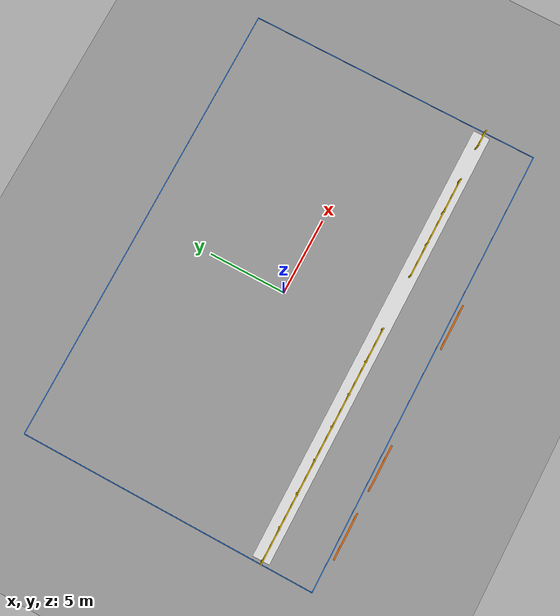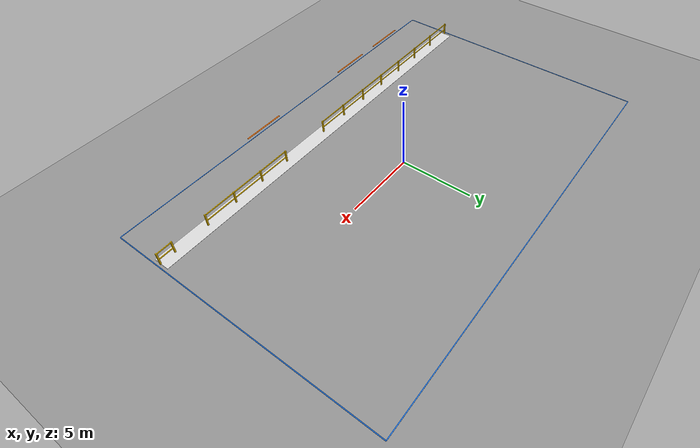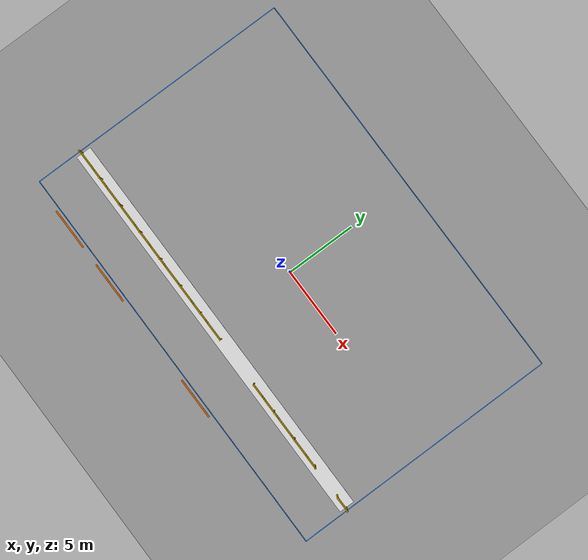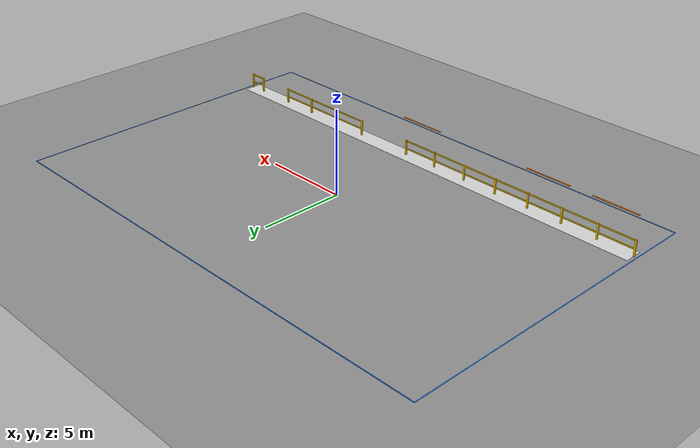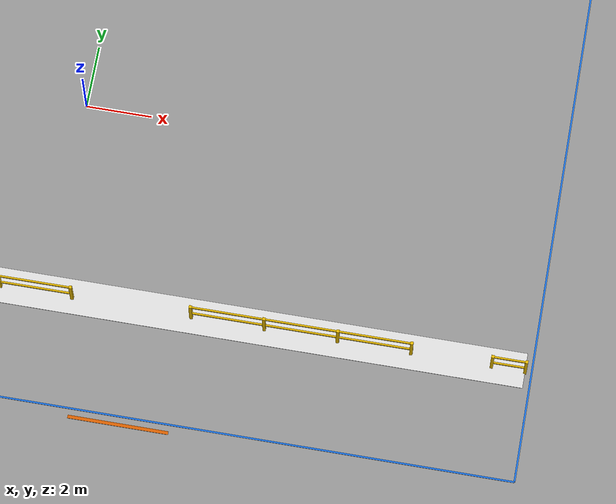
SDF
<sdf version="1.8">
 <world name="warehouse_meerhoven">
  <physics name="default_physics" type="ode">
   <max_step_size>0.001</max_step_size>
   <real_time_factor>1.0</real_time_factor>
   <real_time_update_rate>1000</real_time_update_rate>
  </physics>
  <plugin filename="gz-sim-physics-system" name="gz::sim::systems::Physics"/>
  <plugin filename="gz-sim-user-commands-system" name="gz::sim::systems::UserCommands"/>
  <plugin filename="gz-sim-scene-broadcaster-system" name="gz::sim::systems::SceneBroadcaster"/>
  <plugin filename="gz-sim-sensors-system" name="gz::sim::systems::Sensors">
   <render_engine>ogre2</render_engine>
  </plugin>
  <plugin filename="gz-sim-contact-system" name="gz::sim::systems::Contact"/>
  <scene><ambient>0.72 0.72 0.72 1</ambient><background>0.82 0.86 0.90 1</background><grid>false</grid></scene>
  <light type="directional" name="sun">
   <pose>0 0 12 0 0 0</pose>
   <diffuse>0.9 0.9 0.9 1</diffuse>
   <specular>0.25 0.25 0.25 1</specular>
   <direction>-0.4 0.3 -0.9</direction>
  </light>
  <model name="ground_plane">
   <static>true</static>
   <link name="link">
    <collision name="collision">
     <geometry><plane><normal>0 0 1</normal><size>200 200</size></plane></geometry>
    </collision>
    <visual name="visual">
     <geometry><plane><normal>0 0 1</normal><size>200 200</size></plane></geometry>
     <material><ambient>0.55 0.55 0.55 1</ambient><diffuse>0.58 0.58 0.58 1</diffuse></material>
    </visual>
   </link>
  </model>
  <model name="floor_markings">
   <static>true</static>
   <link name="bnd_s">
    <pose>0.000 -9.600 0.035 0 0 0</pose>
    <visual name="visual">
     <geometry><box><size>29.200 0.050 0.014</size></box></geometry>
     <material><ambient>0.10 0.45 0.90 1</ambient><diffuse>0.10 0.45 0.90 1</diffuse></material>
    </visual>
   </link>
   <link name="bnd_n">
    <pose>0.000 9.600 0.035 0 0 0</pose>
    <visual name="visual">
     <geometry><box><size>29.200 0.050 0.014</size></box></geometry>
     <material><ambient>0.10 0.45 0.90 1</ambient><diffuse>0.10 0.45 0.90 1</diffuse></material>
    </visual>
   </link>
   <link name="bnd_w">
    <pose>-14.600 0.000 0.035 0 0 0</pose>
    <visual name="visual">
     <geometry><box><size>0.050 19.200 0.014</size></box></geometry>
     <material><ambient>0.10 0.45 0.90 1</ambient><diffuse>0.10 0.45 0.90 1</diffuse></material>
    </visual>
   </link>
   <link name="bnd_e">
    <pose>14.600 0.000 0.035 0 0 0</pose>
    <visual name="visual">
     <geometry><box><size>0.050 19.200 0.014</size></box></geometry>
     <material><ambient>0.10 0.45 0.90 1</ambient><diffuse>0.10 0.45 0.90 1</diffuse></material>
    </visual>
   </link>
   <link name="dock_0">
    <pose>-10.900 -9.860 0.035 0 0 0</pose>
    <visual name="visual">
     <geometry><box><size>3.000 0.100 0.014</size></box></geometry>
     <material><ambient>0.84 0.37 0.00 1</ambient><diffuse>0.84 0.37 0.00 1</diffuse></material>
    </visual>
   </link>
   <link name="dock_1">
    <pose>-6.500 -9.860 0.035 0 0 0</pose>
    <visual name="visual">
     <geometry><box><size>3.000 0.100 0.014</size></box></geometry>
     <material><ambient>0.84 0.37 0.00 1</ambient><diffuse>0.84 0.37 0.00 1</diffuse></material>
    </visual>
   </link>
   <link name="dock_2">
    <pose>2.900 -9.860 0.035 0 0 0</pose>
    <visual name="visual">
     <geometry><box><size>3.000 0.100 0.014</size></box></geometry>
     <material><ambient>0.84 0.37 0.00 1</ambient><diffuse>0.84 0.37 0.00 1</diffuse></material>
    </visual>
   </link>
   <link name="grail_0_post0">
    <pose>-14.400 -6.200 0.475 0 0 0</pose>
    <collision name="collision"><geometry><box><size>0.090 0.090 0.950</size></box></geometry></collision>
    <visual name="visual">
     <geometry><box><size>0.090 0.090 0.950</size></box></geometry>
     <material><ambient>0.90 0.72 0.00 1</ambient><diffuse>0.90 0.72 0.00 1</diffuse></material>
    </visual>
   </link>
   <link name="grail_0_post1">
    <pose>-12.229 -6.200 0.475 0 0 0</pose>
    <collision name="collision"><geometry><box><size>0.090 0.090 0.950</size></box></geometry></collision>
    <visual name="visual">
     <geometry><box><size>0.090 0.090 0.950</size></box></geometry>
     <material><ambient>0.90 0.72 0.00 1</ambient><diffuse>0.90 0.72 0.00 1</diffuse></material>
    </visual>
   </link>
   <link name="grail_0_post2">
    <pose>-10.057 -6.200 0.475 0 0 0</pose>
    <collision name="collision"><geometry><box><size>0.090 0.090 0.950</size></box></geometry></collision>
    <visual name="visual">
     <geometry><box><size>0.090 0.090 0.950</size></box></geometry>
     <material><ambient>0.90 0.72 0.00 1</ambient><diffuse>0.90 0.72 0.00 1</diffuse></material>
    </visual>
   </link>
   <link name="grail_0_post3">
    <pose>-7.886 -6.200 0.475 0 0 0</pose>
    <collision name="collision"><geometry><box><size>0.090 0.090 0.950</size></box></geometry></collision>
    <visual name="visual">
     <geometry><box><size>0.090 0.090 0.950</size></box></geometry>
     <material><ambient>0.90 0.72 0.00 1</ambient><diffuse>0.90 0.72 0.00 1</diffuse></material>
    </visual>
   </link>
   <link name="grail_0_post4">
    <pose>-5.714 -6.200 0.475 0 0 0</pose>
    <collision name="collision"><geometry><box><size>0.090 0.090 0.950</size></box></geometry></collision>
    <visual name="visual">
     <geometry><box><size>0.090 0.090 0.950</size></box></geometry>
     <material><ambient>0.90 0.72 0.00 1</ambient><diffuse>0.90 0.72 0.00 1</diffuse></material>
    </visual>
   </link>
   <link name="grail_0_post5">
    <pose>-3.543 -6.200 0.475 0 0 0</pose>
    <collision name="collision"><geometry><box><size>0.090 0.090 0.950</size></box></geometry></collision>
    <visual name="visual">
     <geometry><box><size>0.090 0.090 0.950</size></box></geometry>
     <material><ambient>0.90 0.72 0.00 1</ambient><diffuse>0.90 0.72 0.00 1</diffuse></material>
    </visual>
   </link>
   <link name="grail_0_post6">
    <pose>-1.371 -6.200 0.475 0 0 0</pose>
    <collision name="collision"><geometry><box><size>0.090 0.090 0.950</size></box></geometry></collision>
    <visual name="visual">
     <geometry><box><size>0.090 0.090 0.950</size></box></geometry>
     <material><ambient>0.90 0.72 0.00 1</ambient><diffuse>0.90 0.72 0.00 1</diffuse></material>
    </visual>
   </link>
   <link name="grail_0_post7">
    <pose>0.800 -6.200 0.475 0 0 0</pose>
    <collision name="collision"><geometry><box><size>0.090 0.090 0.950</size></box></geometry></collision>
    <visual name="visual">
     <geometry><box><size>0.090 0.090 0.950</size></box></geometry>
     <material><ambient>0.90 0.72 0.00 1</ambient><diffuse>0.90 0.72 0.00 1</diffuse></material>
    </visual>
   </link>
   <link name="grail_0_rail0.42">
    <pose>-6.800 -6.200 0.420 0 0 0</pose>
    <visual name="visual">
     <geometry><box><size>15.200 0.050 0.060</size></box></geometry>
     <material><ambient>0.90 0.72 0.00 1</ambient><diffuse>0.90 0.72 0.00 1</diffuse></material>
    </visual>
   </link>
   <link name="grail_0_rail0.90">
    <pose>-6.800 -6.200 0.900 0 0 0</pose>
    <visual name="visual">
     <geometry><box><size>15.200 0.050 0.060</size></box></geometry>
     <material><ambient>0.90 0.72 0.00 1</ambient><diffuse>0.90 0.72 0.00 1</diffuse></material>
    </visual>
   </link>
   <link name="grail_1_post0">
    <pose>4.400 -6.200 0.475 0 0 0</pose>
    <collision name="collision"><geometry><box><size>0.090 0.090 0.950</size></box></geometry></collision>
    <visual name="visual">
     <geometry><box><size>0.090 0.090 0.950</size></box></geometry>
     <material><ambient>0.90 0.72 0.00 1</ambient><diffuse>0.90 0.72 0.00 1</diffuse></material>
    </visual>
   </link>
   <link name="grail_1_post1">
    <pose>6.600 -6.200 0.475 0 0 0</pose>
    <collision name="collision"><geometry><box><size>0.090 0.090 0.950</size></box></geometry></collision>
    <visual name="visual">
     <geometry><box><size>0.090 0.090 0.950</size></box></geometry>
     <material><ambient>0.90 0.72 0.00 1</ambient><diffuse>0.90 0.72 0.00 1</diffuse></material>
    </visual>
   </link>
   <link name="grail_1_post2">
    <pose>8.800 -6.200 0.475 0 0 0</pose>
    <collision name="collision"><geometry><box><size>0.090 0.090 0.950</size></box></geometry></collision>
    <visual name="visual">
     <geometry><box><size>0.090 0.090 0.950</size></box></geometry>
     <material><ambient>0.90 0.72 0.00 1</ambient><diffuse>0.90 0.72 0.00 1</diffuse></material>
    </visual>
   </link>
   <link name="grail_1_post3">
    <pose>11.000 -6.200 0.475 0 0 0</pose>
    <collision name="collision"><geometry><box><size>0.090 0.090 0.950</size></box></geometry></collision>
    <visual name="visual">
     <geometry><box><size>0.090 0.090 0.950</size></box></geometry>
     <material><ambient>0.90 0.72 0.00 1</ambient><diffuse>0.90 0.72 0.00 1</diffuse></material>
    </visual>
   </link>
   <link name="grail_1_rail0.42">
    <pose>7.700 -6.200 0.420 0 0 0</pose>
    <visual name="visual">
     <geometry><box><size>6.600 0.050 0.060</size></box></geometry>
     <material><ambient>0.90 0.72 0.00 1</ambient><diffuse>0.90 0.72 0.00 1</diffuse></material>
    </visual>
   </link>
   <link name="grail_1_rail0.90">
    <pose>7.700 -6.200 0.900 0 0 0</pose>
    <visual name="visual">
     <geometry><box><size>6.600 0.050 0.060</size></box></geometry>
     <material><ambient>0.90 0.72 0.00 1</ambient><diffuse>0.90 0.72 0.00 1</diffuse></material>
    </visual>
   </link>
   <link name="grail_2_post0">
    <pose>13.400 -6.200 0.475 0 0 0</pose>
    <collision name="collision"><geometry><box><size>0.090 0.090 0.950</size></box></geometry></collision>
    <visual name="visual">
     <geometry><box><size>0.090 0.090 0.950</size></box></geometry>
     <material><ambient>0.90 0.72 0.00 1</ambient><diffuse>0.90 0.72 0.00 1</diffuse></material>
    </visual>
   </link>
   <link name="grail_2_post1">
    <pose>14.400 -6.200 0.475 0 0 0</pose>
    <collision name="collision"><geometry><box><size>0.090 0.090 0.950</size></box></geometry></collision>
    <visual name="visual">
     <geometry><box><size>0.090 0.090 0.950</size></box></geometry>
     <material><ambient>0.90 0.72 0.00 1</ambient><diffuse>0.90 0.72 0.00 1</diffuse></material>
    </visual>
   </link>
   <link name="grail_2_rail0.42">
    <pose>13.900 -6.200 0.420 0 0 0</pose>
    <visual name="visual">
     <geometry><box><size>1.000 0.050 0.060</size></box></geometry>
     <material><ambient>0.90 0.72 0.00 1</ambient><diffuse>0.90 0.72 0.00 1</diffuse></material>
    </visual>
   </link>
   <link name="grail_2_rail0.90">
    <pose>13.900 -6.200 0.900 0 0 0</pose>
    <visual name="visual">
     <geometry><box><size>1.000 0.050 0.060</size></box></geometry>
     <material><ambient>0.90 0.72 0.00 1</ambient><diffuse>0.90 0.72 0.00 1</diffuse></material>
    </visual>
   </link>
   <link name="walkway_0">
    <pose>0.000 -6.150 0.030 0 0 0</pose>
    <visual name="visual">
     <geometry><box><size>28.800 1.100 0.012</size></box></geometry>
     <material><ambient>0.86 0.86 0.86 1</ambient><diffuse>0.86 0.86 0.86 1</diffuse></material>
    </visual>
   </link>
  </model>
  <include>
   <name>external_camera</name>
   <uri>model://external_camera</uri>
   <pose>-8.600 -9.600 6.100 0 0.91979 1.53589</pose>
  </include>
  <include>
   <name>external_camera_b</name>
   <uri>model://external_camera_b</uri>
   <pose>2.700 -9.600 6.100 0 0.91979 1.60570</pose>
  </include>
  <include>
   <name>external_camera_c</name>
   <uri>model://external_camera_c</uri>
   <pose>5.000 -5.600 6.100 0 1.08210 1.08210</pose>
  </include>
  <include>
   <name>external_camera_d</name>
   <uri>model://external_camera_d</uri>
   <pose>14.700 5.400 5.600 0 0.91979 -2.18166</pose>
  </include>
  <include>
   <name>external_camera_e</name>
   <uri>model://external_camera_e</uri>
   <pose>10.950 -6.500 2.900 0 1.08210 -1.74533</pose>
  </include>
  <include>
   <name>external_camera_f</name>
   <uri>model://external_camera_f</uri>
   <pose>14.200 9.400 3.300 0 1.22173 -2.23402</pose>
  </include>
  <include>
   <name>external_camera_g</name>
   <uri>model://external_camera_g</uri>
   <pose>-12.000 9.700 6.100 0 0.91979 -1.57080</pose>
  </include>
  <include>
   <name>external_camera_h</name>
   <uri>model://external_camera_h</uri>
   <pose>5.000 2.200 6.100 0 0.91979 -1.57080</pose>
  </include>
  <include>
   <name>external_camera_i</name>
   <uri>model://external_camera_i</uri>
   <pose>-7.400 9.700 6.100 0 0.91979 -1.57080</pose>
  </include>
  <include>
   <name>external_camera_j</name>
   <uri>model://external_camera_j</uri>
   <pose>-12.000 -9.700 6.100 0 0.91979 1.57080</pose>
  </include>
  <include>
   <name>external_camera_k</name>
   <uri>model://external_camera_k</uri>
   <pose>-3.000 -5.600 6.100 0 0.91979 0.00000</pose>
  </include>
  <include>
   <name>external_camera_l</name>
   <uri>model://external_camera_l</uri>
   <pose>-14.700 2.000 6.100 0 0.91979 0.00000</pose>
  </include>
 </world>
</sdf>

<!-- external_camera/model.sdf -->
<sdf version="1.6">
  <model name="external_camera">
    <static>true</static>
    <pose>0 0 0 0 0 0</pose>
    <link name="link">
      <sensor name="camera" type="camera">
        <camera>
          <horizontal_fov>1.5708</horizontal_fov> <!-- 90 degrees -->
          <image>
            <width>1280</width>
            <height>720</height>
          </image>
          <clip>
            <near>0.1</near>
            <far>100</far>
          </clip>
        </camera>
        <always_on>1</always_on>
        <update_rate>5</update_rate>
        <visualize>false</visualize>
        <topic>external_camera/image_raw</topic>
      </sensor>
      <sensor name="depth_camera" type="depth_camera">
        <camera>
          <horizontal_fov>1.5708</horizontal_fov>
          <image><width>1280</width><height>720</height><format>R_FLOAT32</format></image>
          <clip><near>0.1</near><far>100</far></clip>
        </camera>
        <always_on>0</always_on>
        <update_rate>5</update_rate>
        <visualize>false</visualize>
        <topic>external_camera/depth</topic>
      </sensor>
      <sensor name="segmentation_camera" type="segmentation">
        <camera>
          <segmentation_type>semantic</segmentation_type>
          <horizontal_fov>1.5708</horizontal_fov>
          <image>
            <width>1280</width>
            <height>720</height>
          </image>
          <clip>
            <near>0.1</near>
            <far>100</far>
          </clip>
        </camera>
        <always_on>0</always_on>
        <update_rate>1</update_rate>
        <visualize>false</visualize>
        <topic>external_camera/segmentation</topic>
      </sensor>
    </link>
  </model>
</sdf>

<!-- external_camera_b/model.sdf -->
<sdf version="1.6">
  <model name="external_camera_b">
    <static>true</static>
    <pose>0 0 0 0 0 0</pose>
    <link name="link">
      <sensor name="camera" type="camera">
        <camera>
          <horizontal_fov>1.5708</horizontal_fov>
          <image>
            <width>1280</width>
            <height>720</height>
          </image>
          <clip>
            <near>0.1</near>
            <far>100</far>
          </clip>
        </camera>
        <always_on>1</always_on>
        <update_rate>5</update_rate>
        <visualize>false</visualize>
        <topic>external_camera_b/image_raw</topic>
      </sensor>
      <sensor name="depth_camera" type="depth_camera">
        <camera>
          <horizontal_fov>1.5708</horizontal_fov>
          <image><width>1280</width><height>720</height><format>R_FLOAT32</format></image>
          <clip><near>0.1</near><far>100</far></clip>
        </camera>
        <always_on>0</always_on>
        <update_rate>5</update_rate>
        <visualize>false</visualize>
        <topic>external_camera_b/depth</topic>
      </sensor>
      <sensor name="segmentation_camera" type="segmentation">
        <camera>
          <segmentation_type>semantic</segmentation_type>
          <horizontal_fov>1.5708</horizontal_fov>
          <image>
            <width>1280</width>
            <height>720</height>
          </image>
          <clip>
            <near>0.1</near>
            <far>100</far>
          </clip>
        </camera>
        <always_on>0</always_on>
        <update_rate>1</update_rate>
        <visualize>false</visualize>
        <topic>external_camera_b/segmentation</topic>
      </sensor>
    </link>
  </model>
</sdf>

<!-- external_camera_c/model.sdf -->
<sdf version="1.6">
  <model name="external_camera_c">
    <static>true</static>
    <pose>0 0 0 0 0 0</pose>
    <link name="link">
      <sensor name="camera" type="camera">
        <camera>
          <horizontal_fov>1.5708</horizontal_fov>
          <image>
            <width>1280</width>
            <height>720</height>
          </image>
          <clip>
            <near>0.1</near>
            <far>100</far>
          </clip>
        </camera>
        <always_on>1</always_on>
        <update_rate>5</update_rate>
        <visualize>false</visualize>
        <topic>external_camera_c/image_raw</topic>
      </sensor>
      <sensor name="depth_camera" type="depth_camera">
        <camera>
          <horizontal_fov>1.5708</horizontal_fov>
          <image><width>1280</width><height>720</height><format>R_FLOAT32</format></image>
          <clip><near>0.1</near><far>100</far></clip>
        </camera>
        <always_on>0</always_on>
        <update_rate>5</update_rate>
        <visualize>false</visualize>
        <topic>external_camera_c/depth</topic>
      </sensor>
      <sensor name="segmentation_camera" type="segmentation">
        <camera>
          <segmentation_type>semantic</segmentation_type>
          <horizontal_fov>1.5708</horizontal_fov>
          <image>
            <width>1280</width>
            <height>720</height>
          </image>
          <clip>
            <near>0.1</near>
            <far>100</far>
          </clip>
        </camera>
        <always_on>0</always_on>
        <update_rate>1</update_rate>
        <visualize>false</visualize>
        <topic>external_camera_c/segmentation</topic>
      </sensor>
    </link>
  </model>
</sdf>

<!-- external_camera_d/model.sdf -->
<sdf version="1.6">
  <model name="external_camera_d">
    <static>true</static>
    <pose>0 0 0 0 0 0</pose>
    <link name="link">
      <sensor name="camera" type="camera">
        <camera>
          <horizontal_fov>1.5708</horizontal_fov>
          <image>
            <width>1280</width>
            <height>720</height>
          </image>
          <clip>
            <near>0.1</near>
            <far>100</far>
          </clip>
        </camera>
        <always_on>1</always_on>
        <update_rate>5</update_rate>
        <visualize>false</visualize>
        <topic>external_camera_d/image_raw</topic>
      </sensor>
      <sensor name="depth_camera" type="depth_camera">
        <camera>
          <horizontal_fov>1.5708</horizontal_fov>
          <image><width>1280</width><height>720</height><format>R_FLOAT32</format></image>
          <clip><near>0.1</near><far>100</far></clip>
        </camera>
        <always_on>0</always_on>
        <update_rate>5</update_rate>
        <visualize>false</visualize>
        <topic>external_camera_d/depth</topic>
      </sensor>
      <sensor name="segmentation_camera" type="segmentation">
        <camera>
          <segmentation_type>semantic</segmentation_type>
          <horizontal_fov>1.5708</horizontal_fov>
          <image>
            <width>1280</width>
            <height>720</height>
          </image>
          <clip>
            <near>0.1</near>
            <far>100</far>
          </clip>
        </camera>
        <always_on>0</always_on>
        <update_rate>1</update_rate>
        <visualize>false</visualize>
        <topic>external_camera_d/segmentation</topic>
      </sensor>
    </link>
  </model>
</sdf>

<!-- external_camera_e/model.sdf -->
<sdf version="1.6">
  <model name="external_camera_e">
    <static>true</static>
    <pose>0 0 0 0 0 0</pose>
    <link name="link">
      <sensor name="camera" type="camera">
        <camera>
          <horizontal_fov>1.5708</horizontal_fov>
          <image><width>1280</width><height>720</height></image>
          <clip><near>0.1</near><far>100</far></clip>
        </camera>
        <always_on>1</always_on>
        <update_rate>5</update_rate>
        <visualize>false</visualize>
        <topic>external_camera_e/image_raw</topic>
      </sensor>
      <sensor name="depth_camera" type="depth_camera">
        <camera>
          <horizontal_fov>1.5708</horizontal_fov>
          <image><width>1280</width><height>720</height><format>R_FLOAT32</format></image>
          <clip><near>0.1</near><far>100</far></clip>
        </camera>
        <always_on>0</always_on>
        <update_rate>5</update_rate>
        <visualize>false</visualize>
        <topic>external_camera_e/depth</topic>
      </sensor>
      <sensor name="segmentation_camera" type="segmentation">
        <camera>
          <segmentation_type>semantic</segmentation_type>
          <horizontal_fov>1.5708</horizontal_fov>
          <image><width>1280</width><height>720</height></image>
          <clip><near>0.1</near><far>100</far></clip>
        </camera>
        <always_on>0</always_on>
        <update_rate>1</update_rate>
        <visualize>false</visualize>
        <topic>external_camera_e/segmentation</topic>
      </sensor>
    </link>
  </model>
</sdf>

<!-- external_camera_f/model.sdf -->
<sdf version="1.6">
  <model name="external_camera_f">
    <static>true</static>
    <pose>0 0 0 0 0 0</pose>
    <link name="link">
      <sensor name="camera" type="camera">
        <camera>
          <horizontal_fov>1.5708</horizontal_fov>
          <image><width>1280</width><height>720</height></image>
          <clip><near>0.1</near><far>100</far></clip>
        </camera>
        <always_on>1</always_on>
        <update_rate>5</update_rate>
        <visualize>false</visualize>
        <topic>external_camera_f/image_raw</topic>
      </sensor>
      <sensor name="depth_camera" type="depth_camera">
        <camera>
          <horizontal_fov>1.5708</horizontal_fov>
          <image><width>1280</width><height>720</height><format>R_FLOAT32</format></image>
          <clip><near>0.1</near><far>100</far></clip>
        </camera>
        <always_on>0</always_on>
        <update_rate>5</update_rate>
        <visualize>false</visualize>
        <topic>external_camera_f/depth</topic>
      </sensor>
      <sensor name="segmentation_camera" type="segmentation">
        <camera>
          <segmentation_type>semantic</segmentation_type>
          <horizontal_fov>1.5708</horizontal_fov>
          <image><width>1280</width><height>720</height></image>
          <clip><near>0.1</near><far>100</far></clip>
        </camera>
        <always_on>0</always_on>
        <update_rate>1</update_rate>
        <visualize>false</visualize>
        <topic>external_camera_f/segmentation</topic>
      </sensor>
    </link>
  </model>
</sdf>

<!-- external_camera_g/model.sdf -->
<sdf version="1.6">
  <model name="external_camera_g">
    <static>true</static>
    <pose>0 0 0 0 0 0</pose>
    <link name="link">
      <sensor name="camera" type="camera">
        <camera>
          <horizontal_fov>1.5708</horizontal_fov>
          <image><width>1280</width><height>720</height></image>
          <clip><near>0.1</near><far>100</far></clip>
        </camera>
        <always_on>1</always_on>
        <update_rate>5</update_rate>
        <visualize>false</visualize>
        <topic>external_camera_g/image_raw</topic>
      </sensor>
      <sensor name="depth_camera" type="depth_camera">
        <camera>
          <horizontal_fov>1.5708</horizontal_fov>
          <image><width>1280</width><height>720</height><format>R_FLOAT32</format></image>
          <clip><near>0.1</near><far>100</far></clip>
        </camera>
        <always_on>0</always_on>
        <update_rate>5</update_rate>
        <visualize>false</visualize>
        <topic>external_camera_g/depth</topic>
      </sensor>
      <sensor name="segmentation_camera" type="segmentation">
        <camera>
          <segmentation_type>semantic</segmentation_type>
          <horizontal_fov>1.5708</horizontal_fov>
          <image><width>1280</width><height>720</height></image>
          <clip><near>0.1</near><far>100</far></clip>
        </camera>
        <always_on>0</always_on>
        <update_rate>1</update_rate>
        <visualize>false</visualize>
        <topic>external_camera_g/segmentation</topic>
      </sensor>
    </link>
  </model>
</sdf>

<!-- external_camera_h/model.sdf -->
<sdf version="1.6">
  <model name="external_camera_h">
    <static>true</static>
    <pose>0 0 0 0 0 0</pose>
    <link name="link">
      <sensor name="camera" type="camera">
        <camera>
          <horizontal_fov>1.5708</horizontal_fov>
          <image><width>1280</width><height>720</height></image>
          <clip><near>0.1</near><far>100</far></clip>
        </camera>
        <always_on>1</always_on>
        <update_rate>5</update_rate>
        <visualize>false</visualize>
        <topic>external_camera_h/image_raw</topic>
      </sensor>
      <sensor name="depth_camera" type="depth_camera">
        <camera>
          <horizontal_fov>1.5708</horizontal_fov>
          <image><width>1280</width><height>720</height><format>R_FLOAT32</format></image>
          <clip><near>0.1</near><far>100</far></clip>
        </camera>
        <always_on>0</always_on>
        <update_rate>5</update_rate>
        <visualize>false</visualize>
        <topic>external_camera_h/depth</topic>
      </sensor>
      <sensor name="segmentation_camera" type="segmentation">
        <camera>
          <segmentation_type>semantic</segmentation_type>
          <horizontal_fov>1.5708</horizontal_fov>
          <image><width>1280</width><height>720</height></image>
          <clip><near>0.1</near><far>100</far></clip>
        </camera>
        <always_on>0</always_on>
        <update_rate>1</update_rate>
        <visualize>false</visualize>
        <topic>external_camera_h/segmentation</topic>
      </sensor>
    </link>
  </model>
</sdf>

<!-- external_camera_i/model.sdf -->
<sdf version="1.6">
  <model name="external_camera_i">
    <static>true</static>
    <pose>0 0 0 0 0 0</pose>
    <link name="link">
      <sensor name="camera" type="camera">
        <camera>
          <horizontal_fov>1.5708</horizontal_fov>
          <image><width>1280</width><height>720</height></image>
          <clip><near>0.1</near><far>100</far></clip>
        </camera>
        <always_on>1</always_on>
        <update_rate>5</update_rate>
        <visualize>false</visualize>
        <topic>external_camera_i/image_raw</topic>
      </sensor>
      <sensor name="depth_camera" type="depth_camera">
        <camera>
          <horizontal_fov>1.5708</horizontal_fov>
          <image><width>1280</width><height>720</height><format>R_FLOAT32</format></image>
          <clip><near>0.1</near><far>100</far></clip>
        </camera>
        <always_on>0</always_on>
        <update_rate>5</update_rate>
        <visualize>false</visualize>
        <topic>external_camera_i/depth</topic>
      </sensor>
      <sensor name="segmentation_camera" type="segmentation">
        <camera>
          <segmentation_type>semantic</segmentation_type>
          <horizontal_fov>1.5708</horizontal_fov>
          <image><width>1280</width><height>720</height></image>
          <clip><near>0.1</near><far>100</far></clip>
        </camera>
        <always_on>0</always_on>
        <update_rate>1</update_rate>
        <visualize>false</visualize>
        <topic>external_camera_i/segmentation</topic>
      </sensor>
    </link>
  </model>
</sdf>

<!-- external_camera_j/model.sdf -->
<sdf version="1.6">
  <model name="external_camera_j">
    <static>true</static>
    <pose>0 0 0 0 0 0</pose>
    <link name="link">
      <sensor name="camera" type="camera">
        <camera>
          <horizontal_fov>1.5708</horizontal_fov>
          <image><width>1280</width><height>720</height></image>
          <clip><near>0.1</near><far>100</far></clip>
        </camera>
        <always_on>1</always_on>
        <update_rate>5</update_rate>
        <visualize>false</visualize>
        <topic>external_camera_j/image_raw</topic>
      </sensor>
      <sensor name="depth_camera" type="depth_camera">
        <camera>
          <horizontal_fov>1.5708</horizontal_fov>
          <image><width>1280</width><height>720</height><format>R_FLOAT32</format></image>
          <clip><near>0.1</near><far>100</far></clip>
        </camera>
        <always_on>0</always_on>
        <update_rate>5</update_rate>
        <visualize>false</visualize>
        <topic>external_camera_j/depth</topic>
      </sensor>
      <sensor name="segmentation_camera" type="segmentation">
        <camera>
          <segmentation_type>semantic</segmentation_type>
          <horizontal_fov>1.5708</horizontal_fov>
          <image><width>1280</width><height>720</height></image>
          <clip><near>0.1</near><far>100</far></clip>
        </camera>
        <always_on>0</always_on>
        <update_rate>1</update_rate>
        <visualize>false</visualize>
        <topic>external_camera_j/segmentation</topic>
      </sensor>
    </link>
  </model>
</sdf>

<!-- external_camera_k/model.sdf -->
<sdf version="1.6">
  <model name="external_camera_k">
    <static>true</static>
    <pose>0 0 0 0 0 0</pose>
    <link name="link">
      <sensor name="camera" type="camera">
        <camera>
          <horizontal_fov>1.5708</horizontal_fov>
          <image><width>1280</width><height>720</height></image>
          <clip><near>0.1</near><far>100</far></clip>
        </camera>
        <always_on>1</always_on>
        <update_rate>5</update_rate>
        <visualize>false</visualize>
        <topic>external_camera_k/image_raw</topic>
      </sensor>
      <sensor name="depth_camera" type="depth_camera">
        <camera>
          <horizontal_fov>1.5708</horizontal_fov>
          <image><width>1280</width><height>720</height><format>R_FLOAT32</format></image>
          <clip><near>0.1</near><far>100</far></clip>
        </camera>
        <always_on>0</always_on>
        <update_rate>5</update_rate>
        <visualize>false</visualize>
        <topic>external_camera_k/depth</topic>
      </sensor>
      <sensor name="segmentation_camera" type="segmentation">
        <camera>
          <segmentation_type>semantic</segmentation_type>
          <horizontal_fov>1.5708</horizontal_fov>
          <image><width>1280</width><height>720</height></image>
          <clip><near>0.1</near><far>100</far></clip>
        </camera>
        <always_on>0</always_on>
        <update_rate>1</update_rate>
        <visualize>false</visualize>
        <topic>external_camera_k/segmentation</topic>
      </sensor>
    </link>
  </model>
</sdf>

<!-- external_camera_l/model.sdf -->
<sdf version="1.6">
  <model name="external_camera_l">
    <static>true</static>
    <pose>0 0 0 0 0 0</pose>
    <link name="link">
      <sensor name="camera" type="camera">
        <camera>
          <horizontal_fov>1.5708</horizontal_fov>
          <image><width>1280</width><height>720</height></image>
          <clip><near>0.1</near><far>100</far></clip>
        </camera>
        <always_on>1</always_on>
        <update_rate>5</update_rate>
        <visualize>false</visualize>
        <topic>external_camera_l/image_raw</topic>
      </sensor>
      <sensor name="depth_camera" type="depth_camera">
        <camera>
          <horizontal_fov>1.5708</horizontal_fov>
          <image><width>1280</width><height>720</height><format>R_FLOAT32</format></image>
          <clip><near>0.1</near><far>100</far></clip>
        </camera>
        <always_on>0</always_on>
        <update_rate>5</update_rate>
        <visualize>false</visualize>
        <topic>external_camera_l/depth</topic>
      </sensor>
      <sensor name="segmentation_camera" type="segmentation">
        <camera>
          <segmentation_type>semantic</segmentation_type>
          <horizontal_fov>1.5708</horizontal_fov>
          <image><width>1280</width><height>720</height></image>
          <clip><near>0.1</near><far>100</far></clip>
        </camera>
        <always_on>0</always_on>
        <update_rate>1</update_rate>
        <visualize>false</visualize>
        <topic>external_camera_l/segmentation</topic>
      </sensor>
    </link>
  </model>
</sdf>
